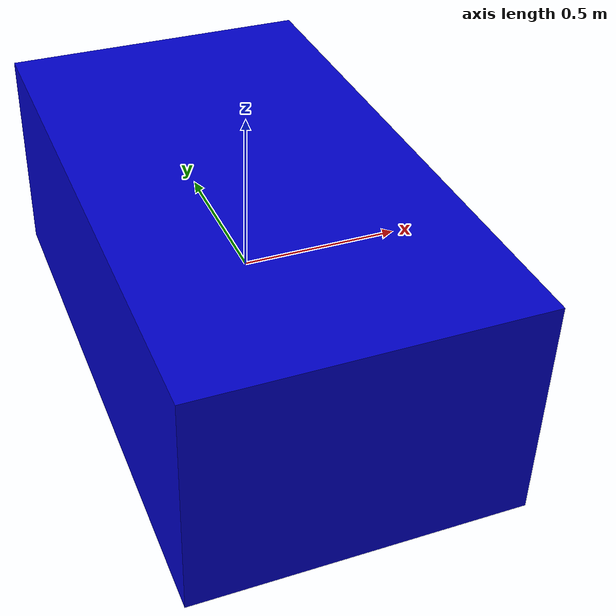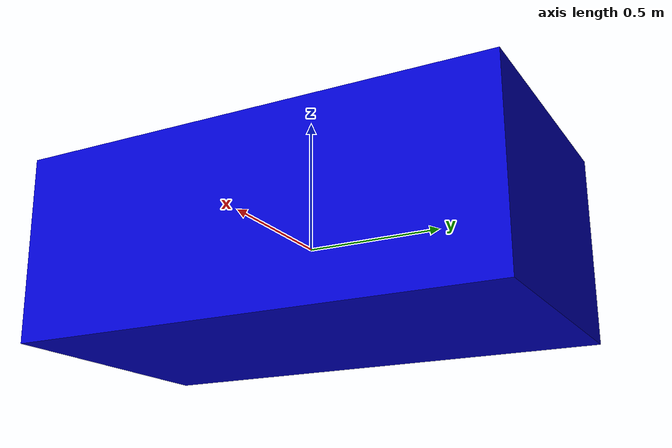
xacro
<?xml version="1.0"?>
<robot name="robot" xmlns:xacro="http://ros.org/wiki/xacro">

  <xacro:property name="h" value="0.4" />
  <xacro:property name="rad" value="0.2" />
  <material name="blue">
    <color rgba="0 0 0.8 1"/>
  </material>

  <material name="white">
    <color rgba="1 1 1 1"/>
  </material>

  <xacro:macro name="basse" params="mass">
    <inertial>
      <mass value="${mass}" />
      <inertia ixx="6.19" ixy="0.0" ixz="0.0" iyy="7.03" iyz="0.0" izz="2.47" />
    </inertial>
  </xacro:macro>
  <link name="base_link">
   </link>

  <link name="chassis">
    <visual>
      <geometry>
        <box size="1.0 1.8 0.7"/>
      </geometry>
      <origin rpy="0 0 0" xyz="0 0 0"/>
      <material name="blue"/>
    </visual>
    <collision>
      <geometry>
        <box size="1.0 1.8 0.7"/>
      </geometry>
    </collision>
    <xacro:basse mass="0.25"/>
  </link>
  <joint name="base_to_chassis" type="fixed">

    <parent link="base_link"/>
    <child link="chassis"/>
    <origin rpy="0 0 0" xyz="0 0 0"/>
  </joint>

  <gazebo>
    <plugin name="gazebo_ros_control" filename="libgazebo_ros_control.so">
      <robotNamespace>/</robotNamespace>
    </plugin>
  </gazebo>
</robot>
